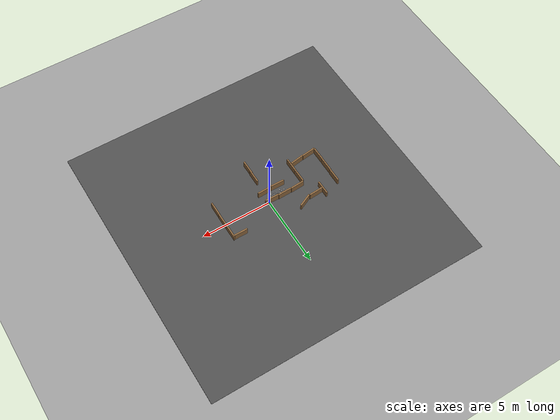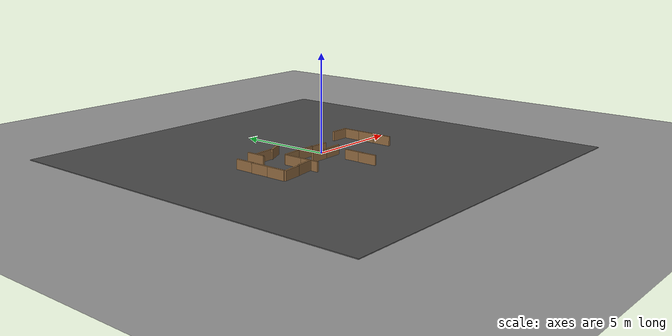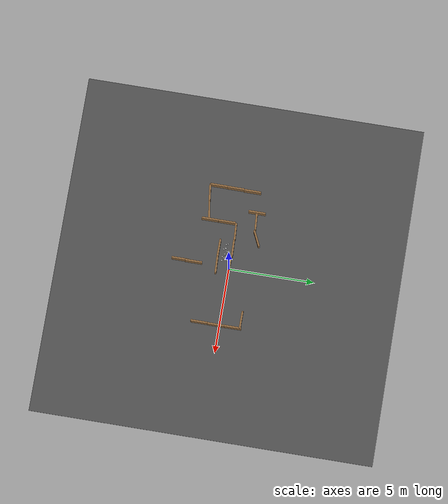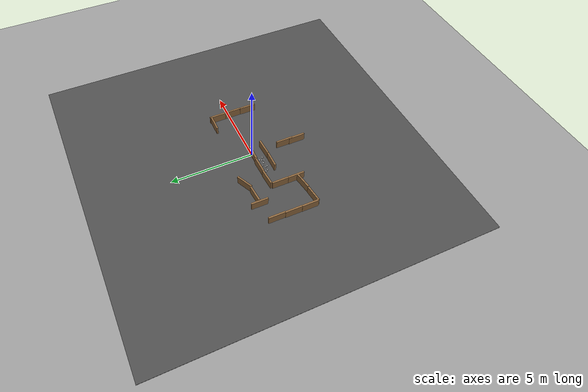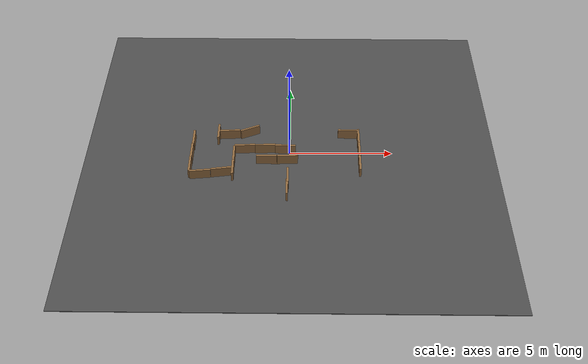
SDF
<sdf version="1.4">
 <world name="default">
  <light name="sun" type="directional">
   <pose>0 0 10 0 -0 0</pose>
   <diffuse>0.8 0.8 0.8 1</diffuse>
   <specular>0.2 0.2 0.2 1</specular>
   <attenuation>
    <range>1000</range>
    <constant>0.9</constant>
    <linear>0.01</linear>
    <quadratic>0.001</quadratic>
   </attenuation>
   <direction>-0.5 0.1 -0.9</direction>
  </light>
  <physics type="ode">
   <max_step_size>0.001</max_step_size>
   <real_time_factor>1</real_time_factor>
   <real_time_update_rate>1000</real_time_update_rate>
   <gravity>0 0 -9.8</gravity>
  </physics>
  <scene><ambient>0.4 0.4 0.4 1</ambient><background>0.7 0.7 0.7 1</background><shadows>1</shadows></scene>
  <spherical_coordinates>
   <surface_model>EARTH_WGS84</surface_model>
   <latitude_deg>0</latitude_deg>
   <longitude_deg>0</longitude_deg>
   <elevation>0</elevation>
   <heading_deg>0</heading_deg>
  </spherical_coordinates>
  <model name="ground_plane_0">
   <static>1</static>
   <link name="link">
    <collision name="collision">
     <geometry><plane><normal>0 0 1</normal><size>100 100</size></plane></geometry>
     <surface><friction><ode><mu>100</mu><mu2>50</mu2></ode></friction></surface>
    </collision>
    <visual name="visual">
     <cast_shadows>0</cast_shadows>
     <geometry><plane><normal>0 0 1</normal><size>100 100</size></plane></geometry>
     <material>
      <script><uri>file://media/materials/scripts/gazebo.material</uri><name>Gazebo/Grey</name></script>
     </material>
    </visual>
    <velocity_decay><linear>0</linear><angular>0</angular></velocity_decay>
   </link>
   <pose>-1 0 0 0 -0 0</pose>
  </model>
  <model name="asphalt_plane_0">
   <static>1</static>
   <link name="link">
    <collision name="collision"><geometry><box><size>20 20 0.1</size></box></geometry></collision>
    <visual name="visual">
     <cast_shadows>0</cast_shadows>
     <geometry><box><size>20 20 0.1</size></box></geometry>
     <material>
      <script>
       <uri>model://asphalt_plane/materials/scripts</uri>
       <uri>model://asphalt_plane/materials/textures</uri>
       <name>vrc/asphalt</name>
      </script>
     </material>
    </visual>
    <velocity_decay><linear>0</linear><angular>0</angular></velocity_decay>
   </link>
   <pose>0.040908 -0.01627 -0.039005 0 -0 0</pose>
  </model>
  <model name="frc2016_roughterrain">
   <static>1</static>
   <link name="link">
    <visual name="platform">
     <pose>0 0 0.08269 0 -0 0</pose>
     <geometry><box><size>1.27 0.5969 0.003175</size></box></geometry>
    </visual>
    <collision name="platform">
     <pose>0 0 0.08269 0 -0 0</pose>
     <geometry><box><size>1.27 0.5969 0.003175</size></box></geometry>
    </collision>
    <visual name="row1_block1_sm">
     <pose>0.51435 0.1143 0.09698 0 -0 0</pose>
     <geometry><box><size>0.0762 0.0762 0.0254</size></box></geometry>
    </visual>
    <collision name="row1_block1_sm">
     <pose>0.51435 0.1143 0.09698 0 -0 0</pose>
     <geometry><box><size>0.0762 0.0762 0.0254</size></box></geometry>
    </collision>
    <visual name="row1_block2_lg">
     <pose>0.40005 0.1143 0.12238 0 -0 0</pose>
     <geometry><box><size>0.0762 0.0762 0.0762</size></box></geometry>
    </visual>
    <collision name="row1_block2_lg">
     <pose>0.40005 0.1143 0.12238 0 -0 0</pose>
     <geometry><box><size>0.0762 0.0762 0.0762</size></box></geometry>
    </collision>
    <visual name="row1_block3_md">
     <pose>0.28575 0.1143 0.10968 0 -0 0</pose>
     <geometry><box><size>0.0762 0.0762 0.0508</size></box></geometry>
    </visual>
    <collision name="row1_block3_md">
     <pose>0.28575 0.1143 0.10968 0 -0 0</pose>
     <geometry><box><size>0.0762 0.0762 0.0508</size></box></geometry>
    </collision>
    <visual name="row1_block4_sm">
     <pose>0.17145 0.1143 0.09698 0 -0 0</pose>
     <geometry><box><size>0.0762 0.0762 0.0254</size></box></geometry>
    </visual>
    <collision name="row1_block4_sm">
     <pose>0.17145 0.1143 0.09698 0 -0 0</pose>
     <geometry><box><size>0.0762 0.0762 0.0254</size></box></geometry>
    </collision>
    <visual name="row1_block5_md">
     <pose>0.05715 0.1143 0.10968 0 -0 0</pose>
     <geometry><box><size>0.0762 0.0762 0.0508</size></box></geometry>
    </visual>
    <collision name="row1_block5_md">
     <pose>0.05715 0.1143 0.10968 0 -0 0</pose>
     <geometry><box><size>0.0762 0.0762 0.0508</size></box></geometry>
    </collision>
    <visual name="row1_block6_lg">
     <pose>-0.05715 0.1143 0.12238 0 -0 0</pose>
     <geometry><box><size>0.0762 0.0762 0.0762</size></box></geometry>
    </visual>
    <collision name="row1_block6_lg">
     <pose>-0.05715 0.1143 0.12238 0 -0 0</pose>
     <geometry><box><size>0.0762 0.0762 0.0762</size></box></geometry>
    </collision>
    <visual name="row1_block7_sm">
     <pose>-0.17145 0.1143 0.09698 0 -0 0</pose>
     <geometry><box><size>0.0762 0.0762 0.0254</size></box></geometry>
    </visual>
    <collision name="row1_block7_sm">
     <pose>-0.17145 0.1143 0.09698 0 -0 0</pose>
     <geometry><box><size>0.0762 0.0762 0.0254</size></box></geometry>
    </collision>
    <visual name="row1_block8_sm">
     <pose>-0.28575 0.1143 0.09698 0 -0 0</pose>
     <geometry><box><size>0.0762 0.0762 0.0254</size></box></geometry>
    </visual>
    <collision name="row1_block8_sm">
     <pose>-0.28575 0.1143 0.09698 0 -0 0</pose>
     <geometry><box><size>0.0762 0.0762 0.0254</size></box></geometry>
    </collision>
    <visual name="row1_block9_md">
     <pose>-0.40005 0.1143 0.10968 0 -0 0</pose>
     <geometry><box><size>0.0762 0.0762 0.0508</size></box></geometry>
    </visual>
    <collision name="row1_block9_md">
     <pose>-0.40005 0.1143 0.10968 0 -0 0</pose>
     <geometry><box><size>0.0762 0.0762 0.0508</size></box></geometry>
    </collision>
    <visual name="row1_block10_lg">
     <pose>-0.51435 0.1143 0.12238 0 -0 0</pose>
     <geometry><box><size>0.0762 0.0762 0.0762</size></box></geometry>
    </visual>
    <collision name="row1_block10_lg">
     <pose>-0.51435 0.1143 0.12238 0 -0 0</pose>
     <geometry><box><size>0.0762 0.0762 0.0762</size></box></geometry>
    </collision>
    <visual name="row2_block1_md">
     <pose>0.5715 0 0.10968 0 -0 0</pose>
     <geometry><box><size>0.0762 0.0762 0.0508</size></box></geometry>
    </visual>
    <collision name="row2_block1_md">
     <pose>0.5715 0 0.10968 0 -0 0</pose>
     <geometry><box><size>0.0762 0.0762 0.0508</size></box></geometry>
    </collision>
    <visual name="row2_block2_sm">
     <pose>0.4572 0 0.09698 0 -0 0</pose>
     <geometry><box><size>0.0762 0.0762 0.0254</size></box></geometry>
    </visual>
    <collision name="row2_block2_sm">
     <pose>0.4572 0 0.09698 0 -0 0</pose>
     <geometry><box><size>0.0762 0.0762 0.0254</size></box></geometry>
    </collision>
    <visual name="row2_block3_lg">
     <pose>0.3429 0 0.12238 0 -0 0</pose>
     <geometry><box><size>0.0762 0.0762 0.0762</size></box></geometry>
    </visual>
    <collision name="row2_block3_lg">
     <pose>0.3429 0 0.12238 0 -0 0</pose>
     <geometry><box><size>0.0762 0.0762 0.0762</size></box></geometry>
    </collision>
    <visual name="row2_block4_md">
     <pose>0.2286 0 0.10968 0 -0 0</pose>
     <geometry><box><size>0.0762 0.0762 0.0508</size></box></geometry>
    </visual>
    <collision name="row2_block4_md">
     <pose>0.2286 0 0.10968 0 -0 0</pose>
     <geometry><box><size>0.0762 0.0762 0.0508</size></box></geometry>
    </collision>
    <visual name="row2_block5_lg">
     <pose>0.1143 0 0.12238 0 -0 0</pose>
     <geometry><box><size>0.0762 0.0762 0.0762</size></box></geometry>
    </visual>
    <collision name="row2_block5_lg">
     <pose>0.1143 0 0.12238 0 -0 0</pose>
     <geometry><box><size>0.0762 0.0762 0.0762</size></box></geometry>
    </collision>
    <visual name="row2_block6_sm">
     <pose>0 0 0.09698 0 -0 0</pose>
     <geometry><box><size>0.0762 0.0762 0.0254</size></box></geometry>
    </visual>
    <collision name="row2_block6_sm">
     <pose>0 0 0.09698 0 -0 0</pose>
     <geometry><box><size>0.0762 0.0762 0.0254</size></box></geometry>
    </collision>
    <visual name="row2_block7_md">
     <pose>-0.1143 0 0.10968 0 -0 0</pose>
     <geometry><box><size>0.0762 0.0762 0.0508</size></box></geometry>
    </visual>
    <collision name="row2_block7_md">
     <pose>-0.1143 0 0.10968 0 -0 0</pose>
     <geometry><box><size>0.0762 0.0762 0.0508</size></box></geometry>
    </collision>
    <visual name="row2_block8_lg">
     <pose>-0.2286 0 0.12238 0 -0 0</pose>
     <geometry><box><size>0.0762 0.0762 0.0762</size></box></geometry>
    </visual>
    <collision name="row2_block8_lg">
     <pose>-0.2286 0 0.12238 0 -0 0</pose>
     <geometry><box><size>0.0762 0.0762 0.0762</size></box></geometry>
    </collision>
    <visual name="row2_block9_sm">
     <pose>-0.3429 0 0.09698 0 -0 0</pose>
     <geometry><box><size>0.0762 0.0762 0.0254</size></box></geometry>
    </visual>
    <collision name="row2_block9_sm">
     <pose>-0.3429 0 0.09698 0 -0 0</pose>
     <geometry><box><size>0.0762 0.0762 0.0254</size></box></geometry>
    </collision>
    <visual name="row2_block10_lg">
     <pose>-0.4572 0 0.12238 0 -0 0</pose>
     <geometry><box><size>0.0762 0.0762 0.0762</size></box></geometry>
    </visual>
    <collision name="row2_block10_lg">
     <pose>-0.4572 0 0.12238 0 -0 0</pose>
     <geometry><box><size>0.0762 0.0762 0.0762</size></box></geometry>
    </collision>
    <visual name="row2_block11_md">
     <pose>-0.5715 0 0.10968 0 -0 0</pose>
     <geometry><box><size>0.0762 0.0762 0.0508</size></box></geometry>
    </visual>
    <collision name="row2_block11_md">
     <pose>-0.5715 0 0.10968 0 -0 0</pose>
     <geometry><box><size>0.0762 0.0762 0.0508</size></box></geometry>
    </collision>
    <visual name="row3_block1_lg">
     <pose>0.51435 -0.1143 0.12238 0 -0 0</pose>
     <geometry><box><size>0.0762 0.0762 0.0762</size></box></geometry>
    </visual>
    <collision name="row3_block1_lg">
     <pose>0.51435 -0.1143 0.12238 0 -0 0</pose>
     <geometry><box><size>0.0762 0.0762 0.0762</size></box></geometry>
    </collision>
    <visual name="row3_block2_md">
     <pose>0.40005 -0.1143 0.10968 0 -0 0</pose>
     <geometry><box><size>0.0762 0.0762 0.0508</size></box></geometry>
    </visual>
    <collision name="row3_block2_md">
     <pose>0.40005 -0.1143 0.10968 0 -0 0</pose>
     <geometry><box><size>0.0762 0.0762 0.0508</size></box></geometry>
    </collision>
    <visual name="row3_block3_lg">
     <pose>0.28575 -0.1143 0.12238 0 -0 0</pose>
     <geometry><box><size>0.0762 0.0762 0.0762</size></box></geometry>
    </visual>
    <collision name="row3_block3_lg">
     <pose>0.28575 -0.1143 0.12238 0 -0 0</pose>
     <geometry><box><size>0.0762 0.0762 0.0762</size></box></geometry>
    </collision>
    <visual name="row3_block4_sm">
     <pose>0.17145 -0.1143 0.09698 0 -0 0</pose>
     <geometry><box><size>0.0762 0.0762 0.0254</size></box></geometry>
    </visual>
    <collision name="row3_block4_sm">
     <pose>0.17145 -0.1143 0.09698 0 -0 0</pose>
     <geometry><box><size>0.0762 0.0762 0.0254</size></box></geometry>
    </collision>
    <visual name="row3_block5_md">
     <pose>0.05715 -0.1143 0.10968 0 -0 0</pose>
     <geometry><box><size>0.0762 0.0762 0.0508</size></box></geometry>
    </visual>
    <collision name="row3_block5_md">
     <pose>0.05715 -0.1143 0.10968 0 -0 0</pose>
     <geometry><box><size>0.0762 0.0762 0.0508</size></box></geometry>
    </collision>
    <visual name="row3_block6_md">
     <pose>-0.05715 -0.1143 0.10968 0 -0 0</pose>
     <geometry><box><size>0.0762 0.0762 0.0508</size></box></geometry>
    </visual>
    <collision name="row3_block6_md">
     <pose>-0.05715 -0.1143 0.10968 0 -0 0</pose>
     <geometry><box><size>0.0762 0.0762 0.0508</size></box></geometry>
    </collision>
    <visual name="row3_block7_lg">
     <pose>-0.17145 -0.1143 0.12238 0 -0 0</pose>
     <geometry><box><size>0.0762 0.0762 0.0762</size></box></geometry>
    </visual>
    <collision name="row3_block7_lg">
     <pose>-0.17145 -0.1143 0.12238 0 -0 0</pose>
     <geometry><box><size>0.0762 0.0762 0.0762</size></box></geometry>
    </collision>
    <visual name="row3_block8_sm">
     <pose>-0.28575 -0.1143 0.09698 0 -0 0</pose>
     <geometry><box><size>0.0762 0.0762 0.0254</size></box></geometry>
    </visual>
    <collision name="row3_block8_sm">
     <pose>-0.28575 -0.1143 0.09698 0 -0 0</pose>
     <geometry><box><size>0.0762 0.0762 0.0254</size></box></geometry>
    </collision>
    <visual name="row3_block9_md">
     <pose>-0.40005 -0.1143 0.10968 0 -0 0</pose>
     <geometry><box><size>0.0762 0.0762 0.0508</size></box></geometry>
    </visual>
    <collision name="row3_block9_md">
     <pose>-0.40005 -0.1143 0.10968 0 -0 0</pose>
     <geometry><box><size>0.0762 0.0762 0.0508</size></box></geometry>
    </collision>
    <visual name="row3_block10_sm">
     <pose>-0.51435 -0.1143 0.09698 0 -0 0</pose>
     <geometry><box><size>0.0762 0.0762 0.0254</size></box></geometry>
    </visual>
    <collision name="row3_block10_sm">
     <pose>-0.51435 -0.1143 0.09698 0 -0 0</pose>
     <geometry><box><size>0.0762 0.0762 0.0254</size></box></geometry>
    </collision>
    <velocity_decay><linear>0</linear><angular>0</angular></velocity_decay>
   </link>
   <pose>-0.954638 -0.372705 -0.125838 0 -0 0</pose>
  </model>
  <model name="mascor_pappTown_wall">
   <pose>-4.7127 0.627608 0 0 -0 0</pose>
   <static>1</static>
   <link name="link">
    <pose>0 0 0.25 0 -0 0</pose>
    <collision name="collision"><geometry><box><size>0.1 1 0.5</size></box></geometry></collision>
    <visual name="visual">
     <geometry><box><size>0.1 1 0.5</size></box></geometry>
     <material>
      <ambient>0.5 0.5 0.5 1</ambient>
      <diffuse>0.57 0.417 0.25 1</diffuse>
      <specular>0.1 0.1 0.1 1</specular>
      <emissive>0 0 0 0</emissive>
     </material>
    </visual>
    <velocity_decay><linear>0</linear><angular>0</angular></velocity_decay>
   </link>
  </model>
  <model name="mascor_pappTown_wall_0">
   <pose>-4.73882 -0.360759 0 0 -0 0</pose>
   <static>1</static>
   <link name="link">
    <pose>0 0 0.25 0 -0 0</pose>
    <collision name="collision"><geometry><box><size>0.1 1 0.5</size></box></geometry></collision>
    <visual name="visual">
     <geometry><box><size>0.1 1 0.5</size></box></geometry>
     <material>
      <ambient>0.5 0.5 0.5 1</ambient>
      <diffuse>0.57 0.417 0.25 1</diffuse>
      <specular>0.1 0.1 0.1 1</specular>
      <emissive>0 0 0 0</emissive>
     </material>
    </visual>
    <velocity_decay><linear>0</linear><angular>0</angular></velocity_decay>
   </link>
  </model>
  <model name="mascor_pappTown_wall_1">
   <pose>-4.74876 -1.3596 0 0 -0 0</pose>
   <static>1</static>
   <link name="link">
    <pose>0 0 0.25 0 -0 0</pose>
    <collision name="collision"><geometry><box><size>0.1 1 0.5</size></box></geometry></collision>
    <visual name="visual">
     <geometry><box><size>0.1 1 0.5</size></box></geometry>
     <material>
      <ambient>0.5 0.5 0.5 1</ambient>
      <diffuse>0.57 0.417 0.25 1</diffuse>
      <specular>0.1 0.1 0.1 1</specular>
      <emissive>0 0 0 0</emissive>
     </material>
    </visual>
    <velocity_decay><linear>0</linear><angular>0</angular></velocity_decay>
   </link>
  </model>
  <model name="mascor_pappTown_wall_2">
   <pose>-3.23369 -1.69263 0.022969 0 -0 1.72608</pose>
   <static>1</static>
   <link name="link">
    <pose>0 0 0.25 0 -0 0</pose>
    <collision name="collision"><geometry><box><size>0.1 1 0.5</size></box></geometry></collision>
    <visual name="visual">
     <geometry><box><size>0.1 1 0.5</size></box></geometry>
     <material>
      <ambient>0.5 0.5 0.5 1</ambient>
      <diffuse>0.57 0.417 0.25 1</diffuse>
      <specular>0.1 0.1 0.1 1</specular>
      <emissive>0 0 0 0</emissive>
     </material>
    </visual>
    <velocity_decay><linear>0</linear><angular>0</angular></velocity_decay>
   </link>
  </model>
  <model name="mascor_pappTown_wall_3">
   <pose>-2.68707 -0.555734 0 0 -0 0</pose>
   <static>1</static>
   <link name="link">
    <pose>0 0 0.25 0 -0 0</pose>
    <collision name="collision"><geometry><box><size>0.1 1 0.5</size></box></geometry></collision>
    <visual name="visual">
     <geometry><box><size>0.1 1 0.5</size></box></geometry>
     <material>
      <ambient>0.5 0.5 0.5 1</ambient>
      <diffuse>0.57 0.417 0.25 1</diffuse>
      <specular>0.1 0.1 0.1 1</specular>
      <emissive>0 0 0 0</emissive>
     </material>
    </visual>
    <velocity_decay><linear>0</linear><angular>0</angular></velocity_decay>
   </link>
  </model>
  <model name="mascor_pappTown_wall_4">
   <pose>-4.23803 -1.82334 -0.011112 0 -0 1.68393</pose>
   <static>1</static>
   <link name="link">
    <pose>0 0 0.25 0 -0 0</pose>
    <collision name="collision"><geometry><box><size>0.1 1 0.5</size></box></geometry></collision>
    <visual name="visual">
     <geometry><box><size>0.1 1 0.5</size></box></geometry>
     <material>
      <ambient>0.5 0.5 0.5 1</ambient>
      <diffuse>0.57 0.417 0.25 1</diffuse>
      <specular>0.1 0.1 0.1 1</specular>
      <emissive>0 0 0 0</emissive>
     </material>
    </visual>
    <velocity_decay><linear>0</linear><angular>0</angular></velocity_decay>
   </link>
  </model>
  <model name="mascor_pappTown_wall_5">
   <pose>-2.69074 -1.53481 0 0 -0 0</pose>
   <static>1</static>
   <link name="link">
    <pose>0 0 0.25 0 -0 0</pose>
    <collision name="collision"><geometry><box><size>0.1 1 0.5</size></box></geometry></collision>
    <visual name="visual">
     <geometry><box><size>0.1 1 0.5</size></box></geometry>
     <material>
      <ambient>0.5 0.5 0.5 1</ambient>
      <diffuse>0.57 0.417 0.25 1</diffuse>
      <specular>0.1 0.1 0.1 1</specular>
      <emissive>0 0 0 0</emissive>
     </material>
    </visual>
    <velocity_decay><linear>0</linear><angular>0</angular></velocity_decay>
   </link>
  </model>
  <model name="mascor_pappTown_wall_6">
   <pose>-1.09758 -0.76378 0.006571 0 -0 1.56166</pose>
   <static>1</static>
   <link name="link">
    <pose>0 0 0.25 0 -0 0</pose>
    <collision name="collision"><geometry><box><size>0.1 1 0.5</size></box></geometry></collision>
    <visual name="visual">
     <geometry><box><size>0.1 1 0.5</size></box></geometry>
     <material>
      <ambient>0.5 0.5 0.5 1</ambient>
      <diffuse>0.57 0.417 0.25 1</diffuse>
      <specular>0.1 0.1 0.1 1</specular>
      <emissive>0 0 0 0</emissive>
     </material>
    </visual>
    <velocity_decay><linear>0</linear><angular>0</angular></velocity_decay>
   </link>
  </model>
  <model name="mascor_pappTown_wall_7">
   <pose>-2.16812 0.023299 0.00413 0 0 -1.51199</pose>
   <static>1</static>
   <link name="link">
    <pose>0 0 0.25 0 -0 0</pose>
    <collision name="collision"><geometry><box><size>0.1 1 0.5</size></box></geometry></collision>
    <visual name="visual">
     <geometry><box><size>0.1 1 0.5</size></box></geometry>
     <material>
      <ambient>0.5 0.5 0.5 1</ambient>
      <diffuse>0.57 0.417 0.25 1</diffuse>
      <specular>0.1 0.1 0.1 1</specular>
      <emissive>0 0 0 0</emissive>
     </material>
    </visual>
    <velocity_decay><linear>0</linear><angular>0</angular></velocity_decay>
   </link>
  </model>
  <model name="mascor_pappTown_wall_8">
   <pose>-3.51495 1.09124 0 0 -0 0</pose>
   <static>1</static>
   <link name="link">
    <pose>0 0 0.25 0 -0 0</pose>
    <collision name="collision"><geometry><box><size>0.1 1 0.5</size></box></geometry></collision>
    <visual name="visual">
     <geometry><box><size>0.1 1 0.5</size></box></geometry>
     <material>
      <ambient>0.5 0.5 0.5 1</ambient>
      <diffuse>0.57 0.417 0.25 1</diffuse>
      <specular>0.1 0.1 0.1 1</specular>
      <emissive>0 0 0 0</emissive>
     </material>
    </visual>
    <velocity_decay><linear>0</linear><angular>0</angular></velocity_decay>
   </link>
  </model>
  <model name="mascor_pappTown_wall_9">
   <pose>3.40536 -0.207296 0 0 -0 0</pose>
   <static>1</static>
   <link name="link">
    <pose>0 0 0.25 0 -0 0</pose>
    <collision name="collision"><geometry><box><size>0.1 1 0.5</size></box></geometry></collision>
    <visual name="visual">
     <geometry><box><size>0.1 1 0.5</size></box></geometry>
     <material>
      <ambient>0.5 0.5 0.5 1</ambient>
      <diffuse>0.57 0.417 0.25 1</diffuse>
      <specular>0.1 0.1 0.1 1</specular>
      <emissive>0 0 0 0</emissive>
     </material>
    </visual>
    <velocity_decay><linear>0</linear><angular>0</angular></velocity_decay>
   </link>
  </model>
  <model name="mascor_pappTown_wall_10">
   <pose>-2.95297 1.11487 0.013799 0 -0 1.63751</pose>
   <static>1</static>
   <link name="link">
    <pose>0 0 0.25 0 -0 0</pose>
    <collision name="collision"><geometry><box><size>0.1 1 0.5</size></box></geometry></collision>
    <visual name="visual">
     <geometry><box><size>0.1 1 0.5</size></box></geometry>
     <material>
      <ambient>0.5 0.5 0.5 1</ambient>
      <diffuse>0.57 0.417 0.25 1</diffuse>
      <specular>0.1 0.1 0.1 1</specular>
      <emissive>0 0 0 0</emissive>
     </material>
    </visual>
    <velocity_decay><linear>0</linear><angular>0</angular></velocity_decay>
   </link>
  </model>
  <model name="mascor_pappTown_wall_11">
   <pose>-0.088864 -2.88897 0 0 -0 0</pose>
   <static>1</static>
   <link name="link">
    <pose>0 0 0.25 0 -0 0</pose>
    <collision name="collision"><geometry><box><size>0.1 1 0.5</size></box></geometry></collision>
    <visual name="visual">
     <geometry><box><size>0.1 1 0.5</size></box></geometry>
     <material>
      <ambient>0.5 0.5 0.5 1</ambient>
      <diffuse>0.57 0.417 0.25 1</diffuse>
      <specular>0.1 0.1 0.1 1</specular>
      <emissive>0 0 0 0</emissive>
     </material>
    </visual>
    <velocity_decay><linear>0</linear><angular>0</angular></velocity_decay>
   </link>
  </model>
  <model name="mascor_pappTown_wall_12">
   <pose>3.3998 0.783908 0 0 -0 0</pose>
   <static>1</static>
   <link name="link">
    <pose>0 0 0.25 0 -0 0</pose>
    <collision name="collision"><geometry><box><size>0.1 1 0.5</size></box></geometry></collision>
    <visual name="visual">
     <geometry><box><size>0.1 1 0.5</size></box></geometry>
     <material>
      <ambient>0.5 0.5 0.5 1</ambient>
      <diffuse>0.57 0.417 0.25 1</diffuse>
      <specular>0.1 0.1 0.1 1</specular>
      <emissive>0 0 0 0</emissive>
     </material>
    </visual>
    <velocity_decay><linear>0</linear><angular>0</angular></velocity_decay>
   </link>
  </model>
  <model name="mascor_pappTown_wall_13">
   <pose>-0.063899 -2.08129 0 0 -0 0</pose>
   <static>1</static>
   <link name="link">
    <pose>0 0 0.25 0 -0 0</pose>
    <collision name="collision"><geometry><box><size>0.1 1 0.5</size></box></geometry></collision>
    <visual name="visual">
     <geometry><box><size>0.1 1 0.5</size></box></geometry>
     <material>
      <ambient>0.5 0.5 0.5 1</ambient>
      <diffuse>0.57 0.417 0.25 1</diffuse>
      <specular>0.1 0.1 0.1 1</specular>
      <emissive>0 0 0 0</emissive>
     </material>
    </visual>
    <velocity_decay><linear>0</linear><angular>0</angular></velocity_decay>
   </link>
  </model>
  <model name="mascor_pappTown_wall_14">
   <pose>-0.08568 -0.746313 0.006768 0 -0 1.60987</pose>
   <static>1</static>
   <link name="link">
    <pose>0 0 0.25 0 -0 0</pose>
    <collision name="collision"><geometry><box><size>0.1 1 0.5</size></box></geometry></collision>
    <visual name="visual">
     <geometry><box><size>0.1 1 0.5</size></box></geometry>
     <material>
      <ambient>0.5 0.5 0.5 1</ambient>
      <diffuse>0.57 0.417 0.25 1</diffuse>
      <specular>0.1 0.1 0.1 1</specular>
      <emissive>0 0 0 0</emissive>
     </material>
    </visual>
    <velocity_decay><linear>0</linear><angular>0</angular></velocity_decay>
   </link>
  </model>
  <model name="mascor_pappTown_wall_15">
   <pose>-0.203427 0.006696 0.009918 0 -0 1.54657</pose>
   <static>1</static>
   <link name="link">
    <pose>0 0 0.25 0 -0 0</pose>
    <collision name="collision"><geometry><box><size>0.1 1 0.5</size></box></geometry></collision>
    <visual name="visual">
     <geometry><box><size>0.1 1 0.5</size></box></geometry>
     <material>
      <ambient>0.5 0.5 0.5 1</ambient>
      <diffuse>0.57 0.417 0.25 1</diffuse>
      <specular>0.1 0.1 0.1 1</specular>
      <emissive>0 0 0 0</emissive>
     </material>
    </visual>
    <velocity_decay><linear>0</linear><angular>0</angular></velocity_decay>
   </link>
  </model>
  <model name="mascor_pappTown_wall_16">
   <pose>-1.18563 0.042977 0.008215 0 -0 1.59736</pose>
   <static>1</static>
   <link name="link">
    <pose>0 0 0.25 0 -0 0</pose>
    <collision name="collision"><geometry><box><size>0.1 1 0.5</size></box></geometry></collision>
    <visual name="visual">
     <geometry><box><size>0.1 1 0.5</size></box></geometry>
     <material>
      <ambient>0.5 0.5 0.5 1</ambient>
      <diffuse>0.57 0.417 0.25 1</diffuse>
      <specular>0.1 0.1 0.1 1</specular>
      <emissive>0 0 0 0</emissive>
     </material>
    </visual>
    <velocity_decay><linear>0</linear><angular>0</angular></velocity_decay>
   </link>
  </model>
  <model name="mascor_pappTown_wall_17">
   <pose>3.3939 -1.18467 0 0 -0 0</pose>
   <static>1</static>
   <link name="link">
    <pose>0 0 0.25 0 -0 0</pose>
    <collision name="collision"><geometry><box><size>0.1 1 0.5</size></box></geometry></collision>
    <visual name="visual">
     <geometry><box><size>0.1 1 0.5</size></box></geometry>
     <material>
      <ambient>0.5 0.5 0.5 1</ambient>
      <diffuse>0.57 0.417 0.25 1</diffuse>
      <specular>0.1 0.1 0.1 1</specular>
      <emissive>0 0 0 0</emissive>
     </material>
    </visual>
    <velocity_decay><linear>0</linear><angular>0</angular></velocity_decay>
   </link>
  </model>
  <model name="mascor_pappTown_wall_18">
   <pose>2.89691 1.19654 0.007745 0 -0 1.56081</pose>
   <static>1</static>
   <link name="link">
    <pose>0 0 0.25 0 -0 0</pose>
    <collision name="collision"><geometry><box><size>0.1 1 0.5</size></box></geometry></collision>
    <visual name="visual">
     <geometry><box><size>0.1 1 0.5</size></box></geometry>
     <material>
      <ambient>0.5 0.5 0.5 1</ambient>
      <diffuse>0.57 0.417 0.25 1</diffuse>
      <specular>0.1 0.1 0.1 1</specular>
      <emissive>0 0 0 0</emissive>
     </material>
    </visual>
    <velocity_decay><linear>0</linear><angular>0</angular></velocity_decay>
   </link>
  </model>
  <model name="mascor_pappTown_wall_19">
   <pose>-1.97158 1.31027 0.008101 0 -0 2.01046</pose>
   <static>1</static>
   <link name="link">
    <pose>0 0 0.25 0 -0 0</pose>
    <collision name="collision"><geometry><box><size>0.1 1 0.5</size></box></geometry></collision>
    <visual name="visual">
     <geometry><box><size>0.1 1 0.5</size></box></geometry>
     <material>
      <ambient>0.5 0.5 0.5 1</ambient>
      <diffuse>0.57 0.417 0.25 1</diffuse>
      <specular>0.1 0.1 0.1 1</specular>
      <emissive>0 0 0 0</emissive>
     </material>
    </visual>
    <velocity_decay><linear>0</linear><angular>0</angular></velocity_decay>
   </link>
  </model>
 </world>
</sdf>
